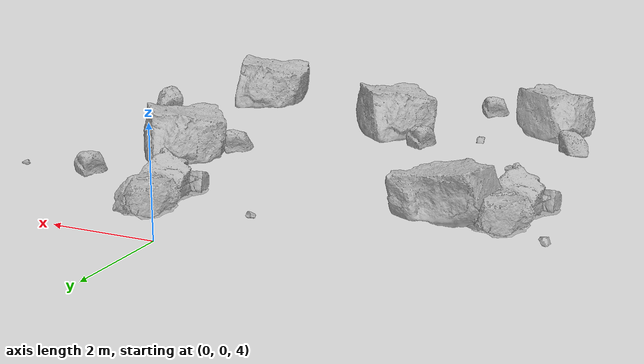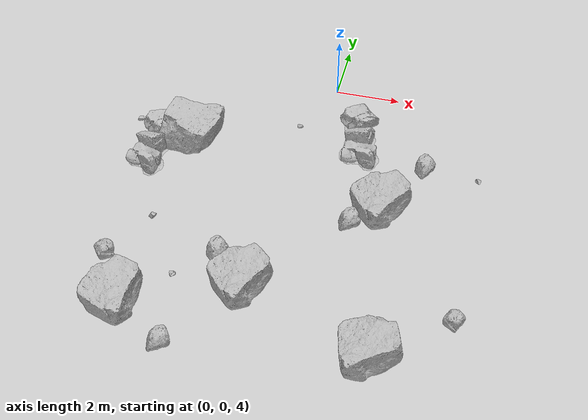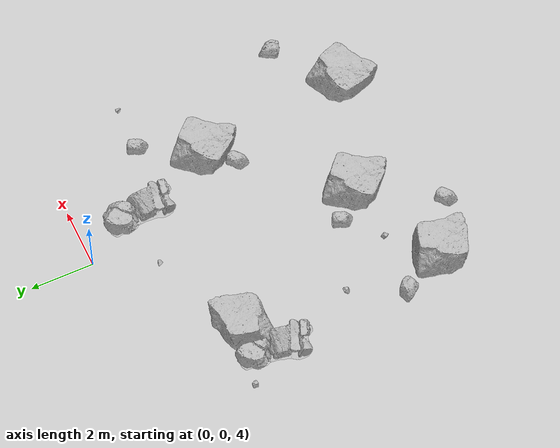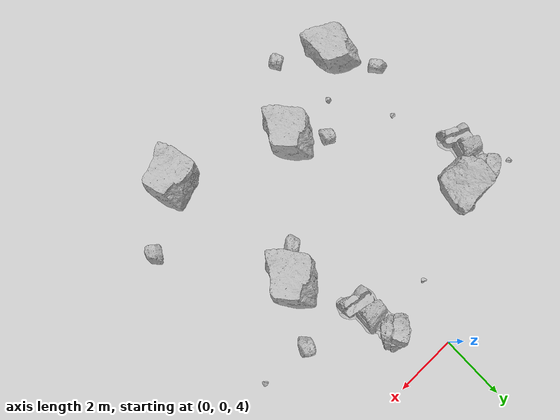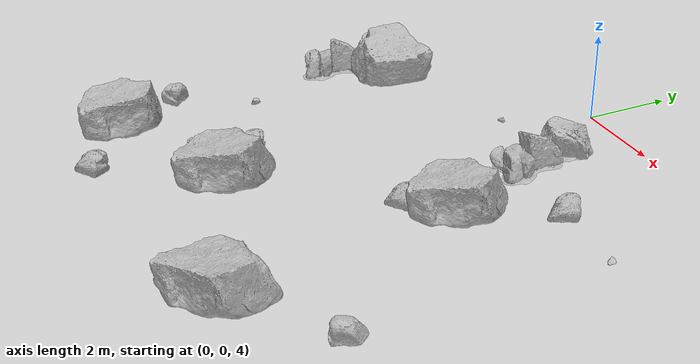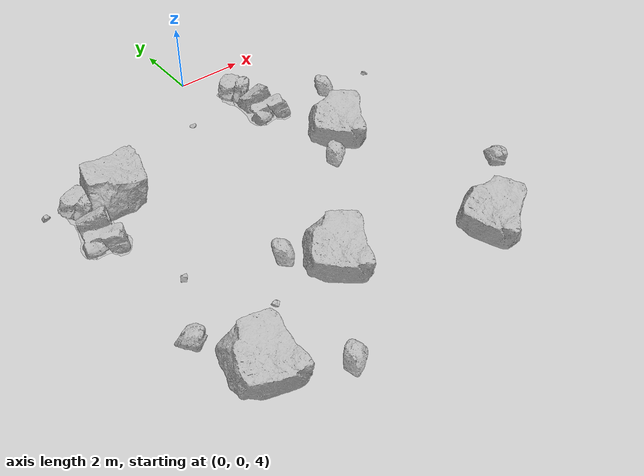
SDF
<sdf version="1.7">
 <world name="marsyard">
  <model name="Rock_17">
   <static>true</static>
   <pose>-4.9579 -3.6967 4.0000 0.0000 0.0000 -1.6259</pose>
   <link name="link">
    <visual name="visual">
     <geometry><mesh><uri>package://rock_generator/rocks_ws/rock_2/meshes/rock_2.stl</uri></mesh></geometry>
    </visual>
    <collision name="collision">
     <geometry><mesh><uri>package://rock_generator/rocks_ws/rock_2/meshes/rock_2.stl</uri></mesh></geometry>
    </collision>
   </link>
  </model>
  <model name="Rock_34">
   <static>true</static>
   <pose>-5.8034 -2.7097 4.0000 0.0000 0.0000 0.4099</pose>
   <link name="link">
    <visual name="visual">
     <geometry><mesh><uri>package://rock_generator/rocks_ws/rock_9/meshes/rock_9.stl</uri></mesh></geometry>
    </visual>
    <collision name="collision">
     <geometry><mesh><uri>package://rock_generator/rocks_ws/rock_9/meshes/rock_9.stl</uri></mesh></geometry>
    </collision>
   </link>
  </model>
  <model name="Rock_38">
   <static>true</static>
   <pose>4.9425 -8.2710 4.0000 0.0000 0.0000 -1.0316</pose>
   <link name="link">
    <visual name="visual">
     <geometry><mesh><uri>package://rock_generator/rocks_ws/rock_3/meshes/rock_3.stl</uri></mesh></geometry>
    </visual>
    <collision name="collision">
     <geometry><mesh><uri>package://rock_generator/rocks_ws/rock_3/meshes/rock_3.stl</uri></mesh></geometry>
    </collision>
   </link>
  </model>
  <model name="Rock_39">
   <static>true</static>
   <pose>-2.8587 -8.4748 4.0000 0.0000 0.0000 -0.7942</pose>
   <link name="link">
    <visual name="visual">
     <geometry><mesh><uri>package://rock_generator/rocks_ws/rock_9/meshes/rock_9.stl</uri></mesh></geometry>
    </visual>
    <collision name="collision">
     <geometry><mesh><uri>package://rock_generator/rocks_ws/rock_9/meshes/rock_9.stl</uri></mesh></geometry>
    </collision>
   </link>
  </model>
  <model name="Rock_41">
   <static>true</static>
   <pose>-3.9904 -9.7477 4.0000 0.0000 0.0000 -2.6765</pose>
   <link name="link">
    <visual name="visual">
     <geometry><mesh><uri>package://rock_generator/rocks_ws/rock_1/meshes/rock_1.stl</uri></mesh></geometry>
    </visual>
    <collision name="collision">
     <geometry><mesh><uri>package://rock_generator/rocks_ws/rock_1/meshes/rock_1.stl</uri></mesh></geometry>
    </collision>
   </link>
  </model>
  <model name="Rock_43">
   <static>true</static>
   <pose>-4.0849 -6.5484 4.0000 0.0000 0.0000 1.4998</pose>
   <link name="link">
    <visual name="visual">
     <geometry><mesh><uri>package://rock_generator/rocks_ws/rock_9/meshes/rock_9.stl</uri></mesh></geometry>
    </visual>
    <collision name="collision">
     <geometry><mesh><uri>package://rock_generator/rocks_ws/rock_9/meshes/rock_9.stl</uri></mesh></geometry>
    </collision>
   </link>
  </model>
  <model name="Rock_51">
   <static>true</static>
   <pose>-0.8005 -1.8623 4.0000 0.0000 0.0000 2.2664</pose>
   <link name="link">
    <visual name="visual">
     <geometry><mesh><uri>package://rock_generator/rocks_ws/rock_7/meshes/rock_7.stl</uri></mesh></geometry>
    </visual>
    <collision name="collision">
     <geometry><mesh><uri>package://rock_generator/rocks_ws/rock_7/meshes/rock_7.stl</uri></mesh></geometry>
    </collision>
   </link>
  </model>
  <model name="Rock_60">
   <static>true</static>
   <pose>-4.9218 -8.1609 4.0000 0.0000 0.0000 0.1215</pose>
   <link name="link">
    <visual name="visual">
     <geometry><mesh><uri>package://rock_generator/rocks_ws/rock_3/meshes/rock_3.stl</uri></mesh></geometry>
    </visual>
   </link>
  </model>
  <model name="Rock_63">
   <static>true</static>
   <pose>3.2410 -2.8924 4.0000 0.0000 0.0000 2.1282</pose>
   <link name="link">
    <visual name="visual">
     <geometry><mesh><uri>package://rock_generator/rocks_ws/rock_3/meshes/rock_3.stl</uri></mesh></geometry>
    </visual>
    <collision name="collision">
     <geometry><mesh><uri>package://rock_generator/rocks_ws/rock_3/meshes/rock_3.stl</uri></mesh></geometry>
    </collision>
   </link>
  </model>
  <model name="Rock_67">
   <static>true</static>
   <pose>1.1221 -1.9983 4.0000 0.0000 0.0000 -1.3793</pose>
   <link name="link">
    <visual name="visual">
     <geometry><mesh><uri>package://rock_generator/rocks_ws/rock_2/meshes/rock_2.stl</uri></mesh></geometry>
    </visual>
   </link>
  </model>
  <model name="Rock_70">
   <static>true</static>
   <pose>-2.5278 -10.7416 4.0000 0.0000 0.0000 1.6422</pose>
   <link name="link">
    <visual name="visual">
     <geometry><mesh><uri>package://rock_generator/rocks_ws/rock_3/meshes/rock_3.stl</uri></mesh></geometry>
    </visual>
    <collision name="collision">
     <geometry><mesh><uri>package://rock_generator/rocks_ws/rock_3/meshes/rock_3.stl</uri></mesh></geometry>
    </collision>
   </link>
  </model>
  <model name="Rock_71">
   <static>true</static>
   <pose>-3.9530 -3.0018 4.0000 0.0000 0.0000 -0.9574</pose>
   <link name="link">
    <visual name="visual">
     <geometry><mesh><uri>package://rock_generator/rocks_ws/rock_1/meshes/rock_1.stl</uri></mesh></geometry>
    </visual>
    <collision name="collision">
     <geometry><mesh><uri>package://rock_generator/rocks_ws/rock_1/meshes/rock_1.stl</uri></mesh></geometry>
    </collision>
   </link>
  </model>
  <model name="Rock_77">
   <static>true</static>
   <pose>-1.9101 -7.4938 4.0000 0.0000 0.0000 2.1802</pose>
   <link name="link">
    <visual name="visual">
     <geometry><mesh><uri>package://rock_generator/rocks_ws/rock_3/meshes/rock_3.stl</uri></mesh></geometry>
    </visual>
    <collision name="collision">
     <geometry><mesh><uri>package://rock_generator/rocks_ws/rock_3/meshes/rock_3.stl</uri></mesh></geometry>
    </collision>
   </link>
  </model>
  <model name="Rock_90">
   <static>true</static>
   <pose>-0.8315 -8.4871 4.0000 0.0000 0.0000 -3.0930</pose>
   <link name="link">
    <visual name="visual">
     <geometry><mesh><uri>package://rock_generator/rocks_ws/rock_1/meshes/rock_1.stl</uri></mesh></geometry>
    </visual>
    <collision name="collision">
     <geometry><mesh><uri>package://rock_generator/rocks_ws/rock_1/meshes/rock_1.stl</uri></mesh></geometry>
    </collision>
   </link>
  </model>
  <model name="Rock_91">
   <static>true</static>
   <pose>2.9327 -9.9798 4.0000 0.0000 0.0000 2.6860</pose>
   <link name="link">
    <visual name="visual">
     <geometry><mesh><uri>package://rock_generator/rocks_ws/rock_1/meshes/rock_1.stl</uri></mesh></geometry>
    </visual>
   </link>
  </model>
  <model name="Rock_93">
   <static>true</static>
   <pose>4.9148 -2.9419 4.0000 0.0000 0.0000 -1.3653</pose>
   <link name="link">
    <visual name="visual">
     <geometry><mesh><uri>package://rock_generator/rocks_ws/rock_7/meshes/rock_7.stl</uri></mesh></geometry>
    </visual>
    <collision name="collision">
     <geometry><mesh><uri>package://rock_generator/rocks_ws/rock_7/meshes/rock_7.stl</uri></mesh></geometry>
    </collision>
   </link>
  </model>
  <model name="Rock_104">
   <static>true</static>
   <pose>1.4519 -5.5029 4.0000 0.0000 0.0000 1.6698</pose>
   <link name="link">
    <visual name="visual">
     <geometry><mesh><uri>package://rock_generator/rocks_ws/rock_3/meshes/rock_3.stl</uri></mesh></geometry>
    </visual>
   </link>
  </model>
  <model name="Rock_118">
   <static>true</static>
   <pose>2.3345 -4.8201 4.0000 0.0000 0.0000 3.1047</pose>
   <link name="link">
    <visual name="visual">
     <geometry><mesh><uri>package://rock_generator/rocks_ws/rock_1/meshes/rock_1.stl</uri></mesh></geometry>
    </visual>
   </link>
  </model>
 </world>
</sdf>
